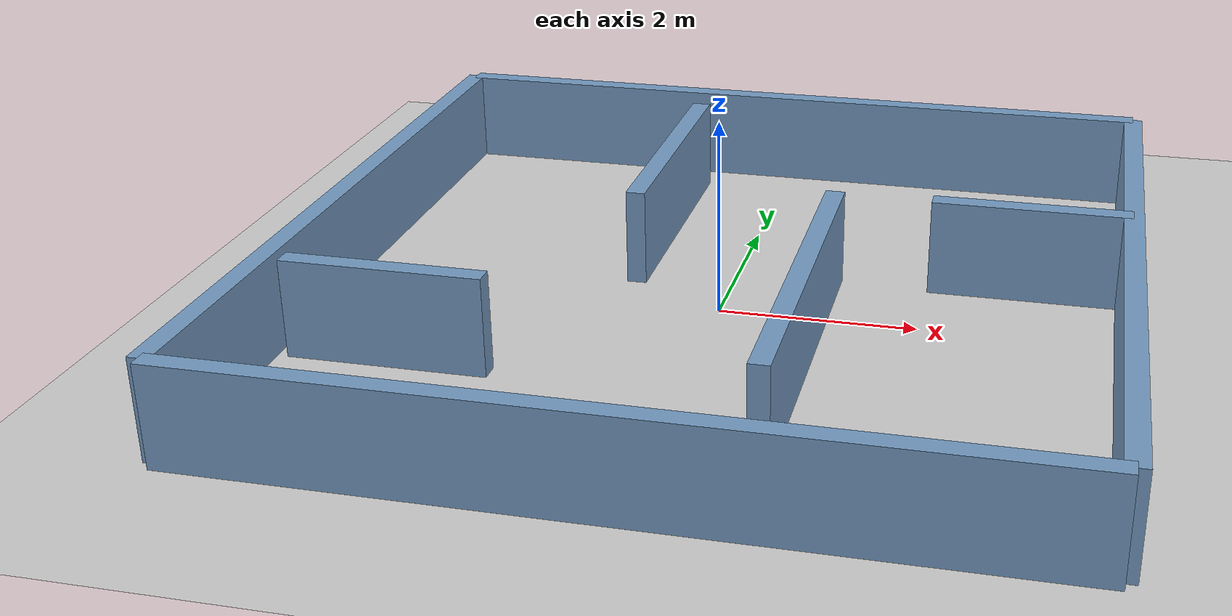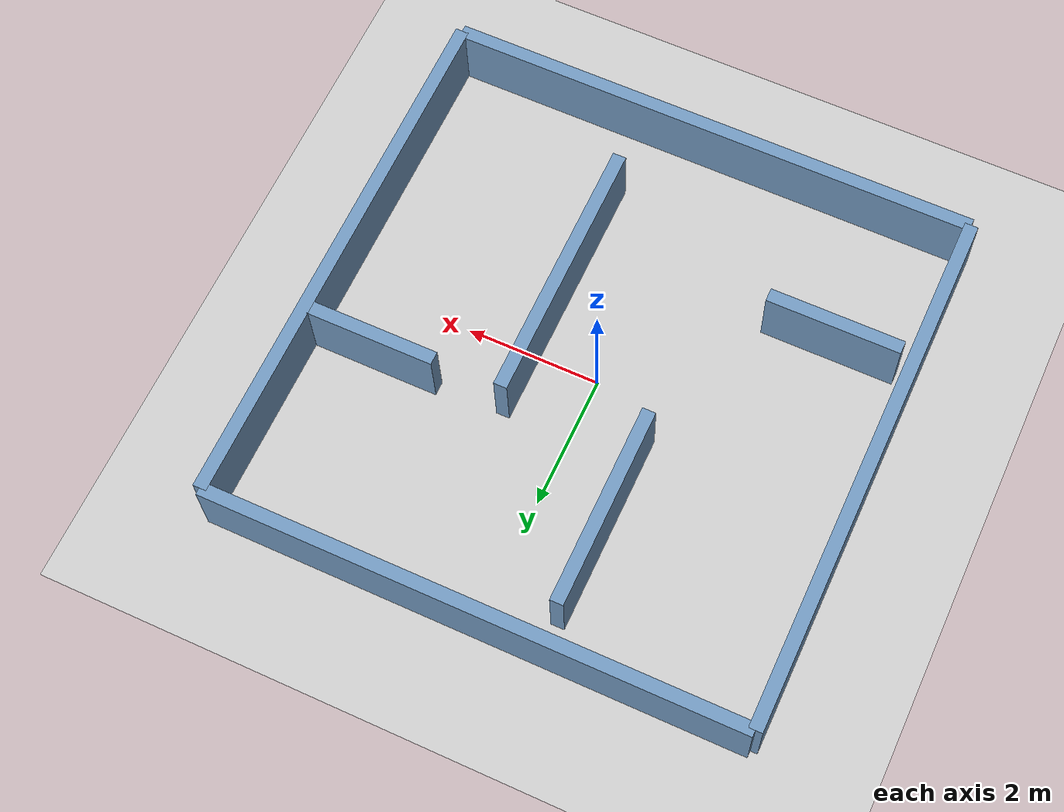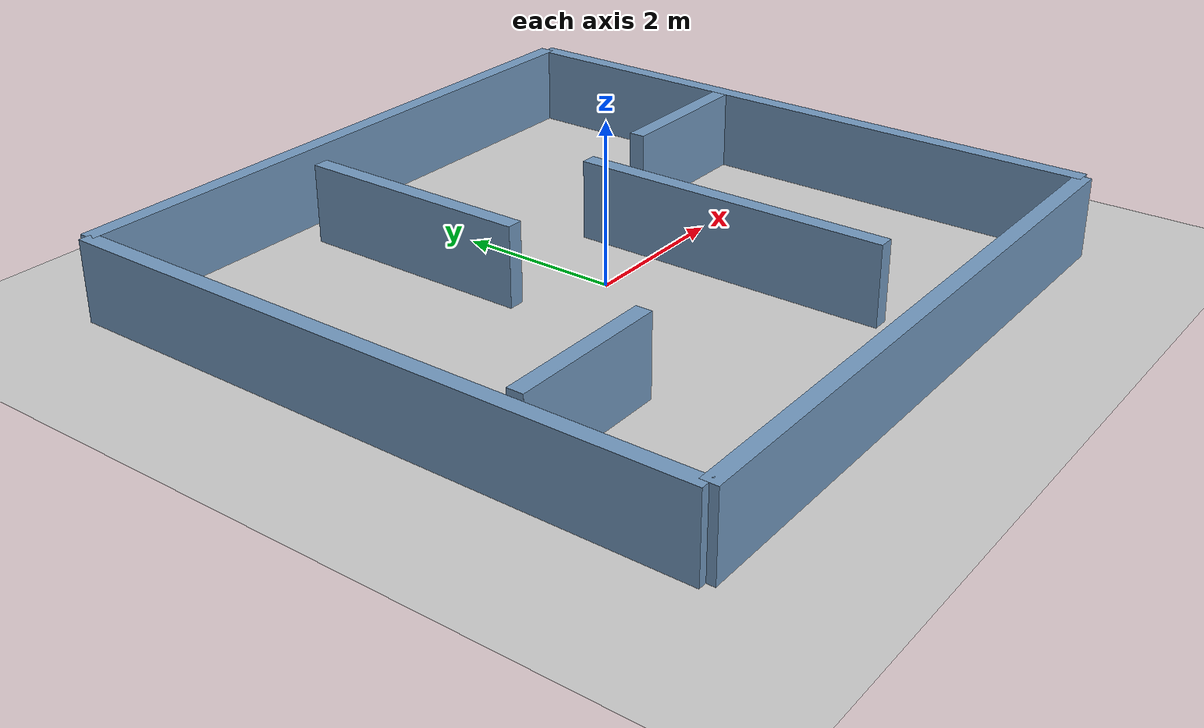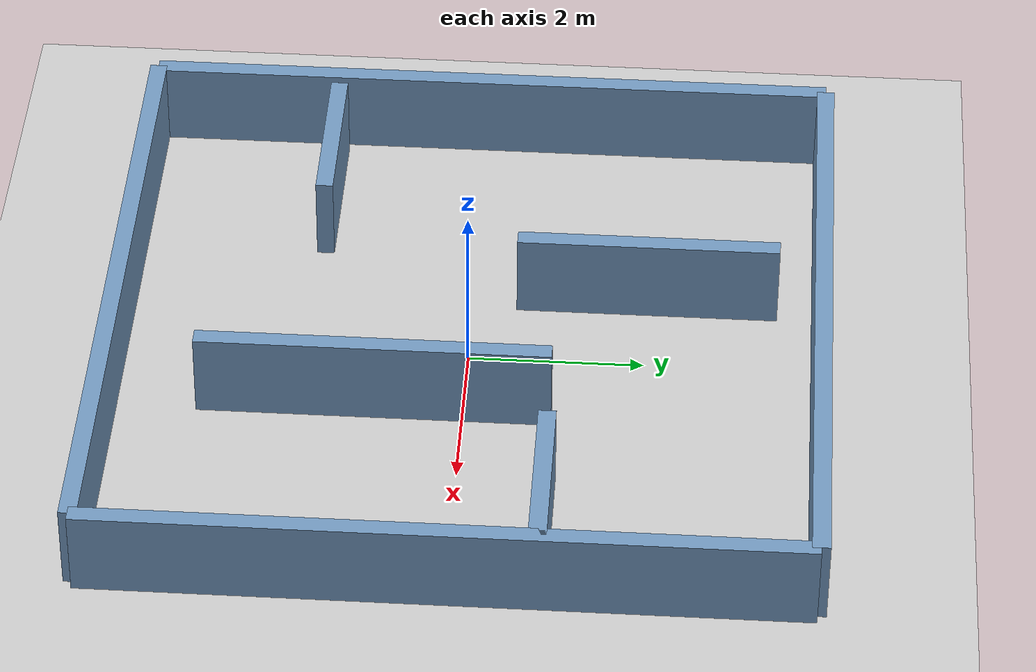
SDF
<?xml version="1.0" ?>
<sdf version="1.9">
  <world name="maze">
    <physics name="physics" type="ignored">
      <max_step_size>0.001</max_step_size>
      <real_time_factor>1.0</real_time_factor>
    </physics>

    <plugin filename="gz-sim-physics-system"
            name="gz::sim::systems::Physics"/>
    <plugin filename="gz-sim-user-commands-system"
            name="gz::sim::systems::UserCommands"/>
    <plugin filename="gz-sim-scene-broadcaster-system"
            name="gz::sim::systems::SceneBroadcaster"/>
    <plugin filename="gz-sim-sensors-system"
            name="gz::sim::systems::Sensors">
      <render_engine>ogre2</render_engine>
    </plugin>

    <light name="sun" type="directional">
      <pose>0 0 10 0 0 0</pose>
      <diffuse>0.8 0.8 0.8 1</diffuse>
      <specular>0.2 0.2 0.2 1</specular>
      <direction>-0.5 -0.5 -1</direction>
    </light>

    <model name="ground">
      <static>true</static>
      <link name="ground_link">
        <collision name="collision">
          <geometry>
            <plane>
              <normal>0 0 1</normal>
              <size>20 20</size>
            </plane>
          </geometry>
        </collision>
        <visual name="visual">
          <geometry>
            <plane>
              <normal>0 0 1</normal>
              <size>20 20</size>
            </plane>
          </geometry>
        </visual>
      </link>
    </model>

    <model name="north">
      <static>true</static>
      <pose>0 4 0.5 0 0 0</pose>
      <link name="link">
        <collision name="collision">
          <geometry>
            <box><size>8 0.2 1</size></box>
          </geometry>
        </collision>
        <visual name="visual">
          <geometry>
            <box><size>8 0.2 1</size></box>
          </geometry>
          <material>
            <diffuse>0.45 0.6 0.75 1</diffuse>
          </material>
        </visual>
      </link>
    </model>

    <model name="south">
      <static>true</static>
      <pose>0 -4 0.5 0 0 0</pose>
      <link name="link">
        <collision name="collision">
          <geometry>
            <box><size>8 0.2 1</size></box>
          </geometry>
        </collision>
        <visual name="visual">
          <geometry>
            <box><size>8 0.2 1</size></box>
          </geometry>
          <material>
            <diffuse>0.45 0.6 0.75 1</diffuse>
          </material>
        </visual>
      </link>
    </model>

    <model name="west">
      <static>true</static>
      <pose>-4 0 0.5 0 0 0</pose>
      <link name="link">
        <collision name="collision">
          <geometry>
            <box><size>0.2 8 1</size></box>
          </geometry>
        </collision>
        <visual name="visual">
          <geometry>
            <box><size>0.2 8 1</size></box>
          </geometry>
          <material>
            <diffuse>0.45 0.6 0.75 1</diffuse>
          </material>
        </visual>
      </link>
    </model>

    <model name="east">
      <static>true</static>
      <pose>4 0 0.5 0 0 0</pose>
      <link name="link">
        <collision name="collision">
          <geometry>
            <box><size>0.2 8 1</size></box>
          </geometry>
        </collision>
        <visual name="visual">
          <geometry>
            <box><size>0.2 8 1</size></box>
          </geometry>
          <material>
            <diffuse>0.45 0.6 0.75 1</diffuse>
          </material>
        </visual>
      </link>
    </model>

    <model name="wall1">
      <static>true</static>
      <pose>-1 2 0.5 0 0 0</pose>
      <link name="link">
        <collision name="collision">
          <geometry>
            <box><size>0.2 3 1</size></box>
          </geometry>
        </collision>
        <visual name="visual">
          <geometry>
            <box><size>0.2 3 1</size></box>
          </geometry>
          <material>
            <diffuse>0.45 0.6 0.75 1</diffuse>
          </material>
        </visual>
      </link>
    </model>

    <model name="wall2">
      <static>true</static>
      <pose>1 -1 0.5 0 0 0</pose>
      <link name="link">
        <collision name="collision">
          <geometry>
            <box><size>0.2 4 1</size></box>
          </geometry>
        </collision>
        <visual name="visual">
          <geometry>
            <box><size>0.2 4 1</size></box>
          </geometry>
          <material>
            <diffuse>0.45 0.6 0.75 1</diffuse>
          </material>
        </visual>
      </link>
    </model>

    <model name="wall3">
      <static>true</static>
      <pose>3 1 0.5 0 0 0</pose>
      <link name="link">
        <collision name="collision">
          <geometry>
            <box><size>2 0.2 1</size></box>
          </geometry>
        </collision>
        <visual name="visual">
          <geometry>
            <box><size>2 0.2 1</size></box>
          </geometry>
          <material>
            <diffuse>0.45 0.6 0.75 1</diffuse>
          </material>
        </visual>
      </link>
    </model>

    <model name="wall4">
      <static>true</static>
      <pose>-2.8 -1.8 0.5 0 0 0</pose>
      <link name="link">
        <collision name="collision">
          <geometry>
            <box><size>2 0.2 1</size></box>
          </geometry>
        </collision>
        <visual name="visual">
          <geometry>
            <box><size>2 0.2 1</size></box>
          </geometry>
          <material>
            <diffuse>0.45 0.6 0.75 1</diffuse>
          </material>
        </visual>
      </link>
    </model>

  </world>
</sdf>
